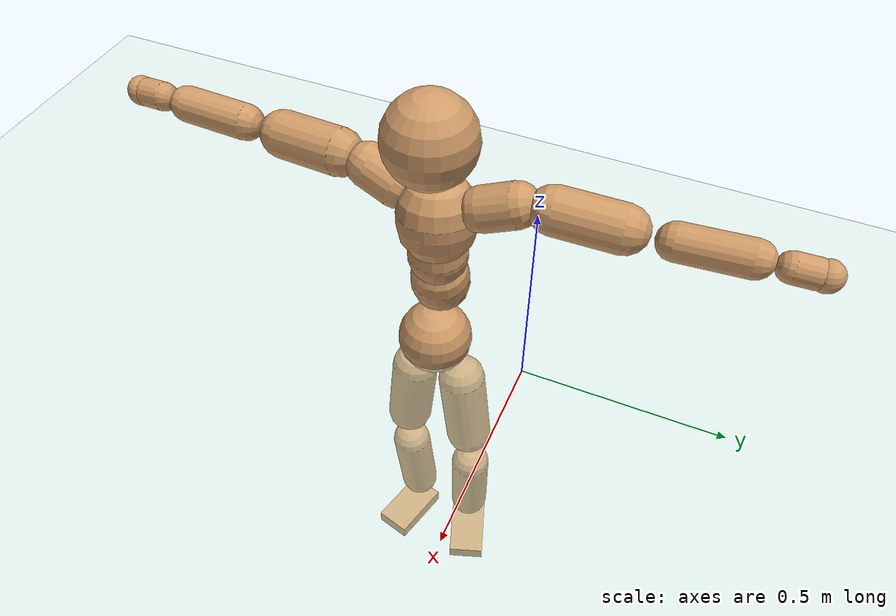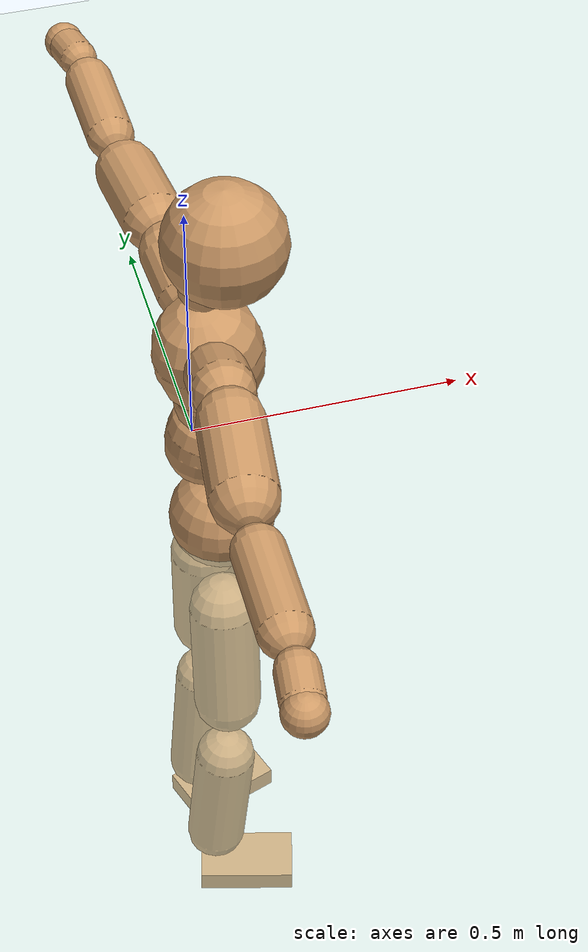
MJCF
<mujoco model="humanoid">
  <compiler coordinate="local"/>
  <default>
    <joint damping="0.0" armature="0.01" stiffness="0.0" limited="true"/>
    <geom conaffinity="1" condim="3" contype="7" margin="0.001" rgba="0.8 0.6 .4 1"/>
  </default>
  <asset>
    <texture type="skybox" builtin="gradient" rgb1=".4 .5 .6" rgb2="0 0 0" width="100" height="100"/>
    <texture builtin="flat" height="1278" mark="cross" markrgb="1 1 1" name="texgeom" random="0.01" rgb1="0.8 0.6 0.4" rgb2="0.8 0.6 0.4" type="cube" width="127"/>
    <texture builtin="checker" height="100" name="texplane" rgb1="0 0 0" rgb2="0.8 0.8 0.8" type="2d" width="100"/>
    <material name="MatPlane" reflectance="0.5" shininess="1" specular="1" texrepeat="60 60" texture="texplane"/>
    <material name="geom" texture="texgeom" texuniform="true"/>
  </asset>
  <worldbody>
    <light cutoff="100" diffuse="1 1 1" dir="-0 0 -1.3" directional="true" exponent="1" pos="0 0 1.3" specular=".1 .1 .1"/>
    <geom conaffinity="1" condim="3" name="floor" pos="0 0 0" rgba="0.8 0.9 0.8 1" size="100 100 .2" type="plane" material="MatPlane"/>
    <body name="Pelvis" pos="-0.0024 -0.2332 0.0238">
      <freejoint name="Pelvis"/>
      <geom type="sphere" contype="1" conaffinity="1" density="500" size="0.0926" pos="0.0000 0.0000 0.0000" name="Pelvis"/>
      <body name="L_Hip" pos="-0.0201 0.0568 -0.0802">
        <joint name="L_Hip_x" type="hinge" pos="0 0 0" axis="1 0 0" stiffness="800" damping="80" armature="0.02" range="-180.0000 180.0000"/>
        <joint name="L_Hip_y" type="hinge" pos="0 0 0" axis="0 1 0" stiffness="800" damping="80" armature="0.02" range="-180.0000 180.0000"/>
        <joint name="L_Hip_z" type="hinge" pos="0 0 0" axis="0 0 1" stiffness="800" damping="80" armature="0.02" range="-180.0000 180.0000"/>
        <geom type="capsule" contype="1" conaffinity="1" density="500" fromto="0.0016 0.0087 -0.0762 0.0063 0.0349 -0.3046" size="0.0612" name="L_Hip"/>
        <body name="L_Knee" pos="0.0078 0.0436 -0.3808">
          <joint name="L_Knee_x" type="hinge" pos="0 0 0" axis="1 0 0" stiffness="800" damping="80" armature="0.02" range="-180.0000 180.0000"/>
          <joint name="L_Knee_y" type="hinge" pos="0 0 0" axis="0 1 0" stiffness="800" damping="80" armature="0.02" range="-180.0000 180.0000"/>
          <joint name="L_Knee_z" type="hinge" pos="0 0 0" axis="0 0 1" stiffness="800" damping="80" armature="0.02" range="-180.0000 180.0000"/>
          <geom type="capsule" contype="1" conaffinity="1" density="500" fromto="-0.0072 -0.0028 -0.0829 -0.0289 -0.0112 -0.3317" size="0.0541" name="L_Knee"/>
          <body name="L_Ankle" pos="-0.0361 -0.014 -0.4146">
            <joint name="L_Ankle_x" type="hinge" pos="0 0 0" axis="1 0 0" stiffness="800" damping="80" armature="0.02" range="-180.0000 180.0000"/>
            <joint name="L_Ankle_y" type="hinge" pos="0 0 0" axis="0 1 0" stiffness="800" damping="80" armature="0.02" range="-180.0000 180.0000"/>
            <joint name="L_Ankle_z" type="hinge" pos="0 0 0" axis="0 0 1" stiffness="800" damping="80" armature="0.02" range="-180.0000 180.0000"/>
            <geom type="box" contype="1" conaffinity="1" density="500" pos="0.0595 0.0204 -0.0294" size="0.0868 0.0512 0.0209" quat="0.9864 0.0000 0.0000 0.1642" name="L_Ankle"/>
            <body name="L_Toe" pos="0.1191 0.0408 -0.0588">
              <joint name="L_Toe_x" type="hinge" pos="0 0 0" axis="1 0 0" stiffness="500" damping="50" armature="0.02" range="-180.0000 180.0000"/>
              <joint name="L_Toe_y" type="hinge" pos="0 0 0" axis="0 1 0" stiffness="500" damping="50" armature="0.02" range="-180.0000 180.0000"/>
              <joint name="L_Toe_z" type="hinge" pos="0 0 0" axis="0 0 1" stiffness="500" damping="50" armature="0.02" range="-180.0000 180.0000"/>
              <geom type="box" contype="1" conaffinity="1" density="500" pos="0.0000 0.0000 0.0287" size="0.0011 0.0025 0.001" quat="0.9856 0.0000 0.0000 0.1689" name="L_Toe"/>
            </body>
          </body>
        </body>
      </body>
      <body name="R_Hip" pos="-0.0164 -0.0589 -0.088">
        <joint name="R_Hip_x" type="hinge" pos="0 0 0" axis="1 0 0" stiffness="800" damping="80" armature="0.02" range="-180.0000 180.0000"/>
        <joint name="R_Hip_y" type="hinge" pos="0 0 0" axis="0 1 0" stiffness="800" damping="80" armature="0.02" range="-180.0000 180.0000"/>
        <joint name="R_Hip_z" type="hinge" pos="0 0 0" axis="0 0 1" stiffness="800" damping="80" armature="0.02" range="-180.0000 180.0000"/>
        <geom type="capsule" contype="1" conaffinity="1" density="500" fromto="-0.0010 -0.0085 -0.0754 -0.0039 -0.0340 -0.3015" size="0.0606" name="R_Hip"/>
        <body name="R_Knee" pos="-0.0049 -0.0425 -0.3769">
          <joint name="R_Knee_x" type="hinge" pos="0 0 0" axis="1 0 0" stiffness="800" damping="80" armature="0.02" range="-180.0000 180.0000"/>
          <joint name="R_Knee_y" type="hinge" pos="0 0 0" axis="0 1 0" stiffness="800" damping="80" armature="0.02" range="-180.0000 180.0000"/>
          <joint name="R_Knee_z" type="hinge" pos="0 0 0" axis="0 0 1" stiffness="800" damping="80" armature="0.02" range="-180.0000 180.0000"/>
          <geom type="capsule" contype="1" conaffinity="1" density="500" fromto="-0.0067 0.0037 -0.0815 -0.0267 0.0148 -0.3261" size="0.0544" name="R_Knee"/>
          <body name="R_Ankle" pos="-0.0334 0.0185 -0.4076">
            <joint name="R_Ankle_x" type="hinge" pos="0 0 0" axis="1 0 0" stiffness="800" damping="80" armature="0.02" range="-180.0000 180.0000"/>
            <joint name="R_Ankle_y" type="hinge" pos="0 0 0" axis="0 1 0" stiffness="800" damping="80" armature="0.02" range="-180.0000 180.0000"/>
            <joint name="R_Ankle_z" type="hinge" pos="0 0 0" axis="0 0 1" stiffness="800" damping="80" armature="0.02" range="-180.0000 180.0000"/>
            <geom type="box" contype="1" conaffinity="1" density="500" pos="0.0637 -0.0169 -0.0303" size="0.0889 0.0504 0.0213" quat="0.9916 0.0000 0.0000 -0.1291" name="R_Ankle"/>
            <body name="R_Toe" pos="0.1274 -0.0338 -0.0607">
              <joint name="R_Toe_x" type="hinge" pos="0 0 0" axis="1 0 0" stiffness="500" damping="50" armature="0.02" range="-180.0000 180.0000"/>
              <joint name="R_Toe_y" type="hinge" pos="0 0 0" axis="0 1 0" stiffness="500" damping="50" armature="0.02" range="-180.0000 180.0000"/>
              <joint name="R_Toe_z" type="hinge" pos="0 0 0" axis="0 0 1" stiffness="500" damping="50" armature="0.02" range="-180.0000 180.0000"/>
              <geom type="box" contype="1" conaffinity="1" density="500" pos="0.0000 0.0000 0.0306" size="0.001 0.0025 0.0011" quat="0.9928 0.0000 0.0000 -0.1200" name="R_Toe"/>
            </body>
          </body>
        </body>
      </body>
      <body name="Torso" pos="-0.0345 0.0043 0.1195">
        <joint name="Torso_x" type="hinge" pos="0 0 0" axis="1 0 0" stiffness="1000" damping="100" armature="0.02" range="-180.0000 180.0000"/>
        <joint name="Torso_y" type="hinge" pos="0 0 0" axis="0 1 0" stiffness="1000" damping="100" armature="0.02" range="-180.0000 180.0000"/>
        <joint name="Torso_z" type="hinge" pos="0 0 0" axis="0 0 1" stiffness="1000" damping="100" armature="0.02" range="-180.0000 180.0000"/>
        <geom type="capsule" contype="1" conaffinity="1" density="500" fromto="0.0162 0.0025 0.0812 0.0108 0.0017 0.0541" size="0.070494" name="Torso"/>
        <body name="Spine" pos="0.027 0.0042 0.1353">
          <joint name="Spine_x" type="hinge" pos="0 0 0" axis="1 0 0" stiffness="1000" damping="100" armature="0.02" range="-180.0000 180.0000"/>
          <joint name="Spine_y" type="hinge" pos="0 0 0" axis="0 1 0" stiffness="1000" damping="100" armature="0.02" range="-180.0000 180.0000"/>
          <joint name="Spine_z" type="hinge" pos="0 0 0" axis="0 0 1" stiffness="1000" damping="100" armature="0.02" range="-180.0000 180.0000"/>
          <geom type="capsule" contype="1" conaffinity="1" density="500" fromto="0.0018 -0.0011 0.0328 0.0012 -0.0008 0.0219" size="0.070308" name="Spine"/>
          <body name="Chest" pos="0.003 -0.0019 0.0547">
            <joint name="Chest_x" type="hinge" pos="0 0 0" axis="1 0 0" stiffness="1000" damping="100" armature="0.02" range="-180.0000 180.0000"/>
            <joint name="Chest_y" type="hinge" pos="0 0 0" axis="0 1 0" stiffness="1000" damping="100" armature="0.02" range="-180.0000 180.0000"/>
            <joint name="Chest_z" type="hinge" pos="0 0 0" axis="0 0 1" stiffness="1000" damping="100" armature="0.02" range="-180.0000 180.0000"/>
            <geom type="capsule" contype="1" conaffinity="1" density="500" fromto="-0.0133 -0.0050 0.0845 -0.0089 -0.0033 0.0563" size="0.091791" name="Chest"/>
            <body name="Neck" pos="-0.0292 -0.0137 0.2041">
              <joint name="Neck_x" type="hinge" pos="0 0 0" axis="1 0 0" stiffness="500" damping="50" armature="0.02" range="-180.0000 180.0000"/>
              <joint name="Neck_y" type="hinge" pos="0 0 0" axis="0 1 0" stiffness="500" damping="50" armature="0.02" range="-180.0000 180.0000"/>
              <joint name="Neck_z" type="hinge" pos="0 0 0" axis="0 0 1" stiffness="500" damping="50" armature="0.02" range="-180.0000 180.0000"/>
              <geom type="capsule" contype="1" conaffinity="1" density="500" fromto="0.0098 0.0020 0.0178 0.0391 0.0080 0.0712" size="0.041292" name="Neck"/>
              <body name="Head" pos="0.0489 0.01 0.089">
                <joint name="Head_x" type="hinge" pos="0 0 0" axis="1 0 0" stiffness="500" damping="50" armature="0.02" range="-180.0000 180.0000"/>
                <joint name="Head_y" type="hinge" pos="0 0 0" axis="0 1 0" stiffness="500" damping="50" armature="0.02" range="-180.0000 180.0000"/>
                <joint name="Head_z" type="hinge" pos="0 0 0" axis="0 0 1" stiffness="500" damping="50" armature="0.02" range="-180.0000 180.0000"/>
                <geom type="sphere" contype="1" conaffinity="1" density="500" size="0.1030" pos="0.0000 0.0000 0.0000" name="Head"/>
              </body>
            </body>
            <body name="L_Thorax" pos="-0.016 0.0713 0.1099">
              <joint name="L_Thorax_x" type="hinge" pos="0 0 0" axis="1 0 0" stiffness="500" damping="50" armature="0.02" range="-180.0000 180.0000"/>
              <joint name="L_Thorax_y" type="hinge" pos="0 0 0" axis="0 1 0" stiffness="500" damping="50" armature="0.02" range="-180.0000 180.0000"/>
              <joint name="L_Thorax_z" type="hinge" pos="0 0 0" axis="0 0 1" stiffness="500" damping="50" armature="0.02" range="-180.0000 180.0000"/>
              <geom type="capsule" contype="1" conaffinity="1" density="500" fromto="-0.0037 0.0245 0.0092 -0.0146 0.0980 0.0367" size="0.0518" name="L_Thorax"/>
              <body name="L_Shoulder" pos="-0.0183 0.1225 0.0458">
                <joint name="L_Shoulder_x" type="hinge" pos="0 0 0" axis="1 0 0" stiffness="500" damping="50" armature="0.02" range="-720.0000 720.0000"/>
                <joint name="L_Shoulder_y" type="hinge" pos="0 0 0" axis="0 1 0" stiffness="500" damping="50" armature="0.02" range="-720.0000 720.0000"/>
                <joint name="L_Shoulder_z" type="hinge" pos="0 0 0" axis="0 0 1" stiffness="500" damping="50" armature="0.02" range="-720.0000 720.0000"/>
                <geom type="capsule" contype="1" conaffinity="1" density="500" fromto="-0.0044 0.0502 -0.0033 -0.0174 0.2008 -0.0130" size="0.0541" name="L_Shoulder"/>
                <body name="L_Elbow" pos="-0.0218 0.2509 -0.0163">
                  <joint name="L_Elbow_x" type="hinge" pos="0 0 0" axis="1 0 0" stiffness="500" damping="50" armature="0.02" range="-720.0000 720.0000"/>
                  <joint name="L_Elbow_y" type="hinge" pos="0 0 0" axis="0 1 0" stiffness="500" damping="50" armature="0.02" range="-720.0000 720.0000"/>
                  <joint name="L_Elbow_z" type="hinge" pos="0 0 0" axis="0 0 1" stiffness="500" damping="50" armature="0.02" range="-720.0000 720.0000"/>
                  <geom type="capsule" contype="1" conaffinity="1" density="500" fromto="-0.0015 0.0520 0.0025 -0.0059 0.2082 0.0099" size="0.0418" name="L_Elbow"/>
                  <body name="L_Wrist" pos="-0.0073 0.2602 0.0123">
                    <joint name="L_Wrist_x" type="hinge" pos="0 0 0" axis="1 0 0" stiffness="300" damping="30" armature="0.02" range="-180.0000 180.0000"/>
                    <joint name="L_Wrist_y" type="hinge" pos="0 0 0" axis="0 1 0" stiffness="300" damping="30" armature="0.02" range="-180.0000 180.0000"/>
                    <joint name="L_Wrist_z" type="hinge" pos="0 0 0" axis="0 0 1" stiffness="300" damping="30" armature="0.02" range="-180.0000 180.0000"/>
                    <geom type="capsule" contype="1" conaffinity="1" density="500" fromto="-0.0031 0.0170 -0.0021 -0.0122 0.0680 -0.0084" size="0.0334" name="L_Wrist"/>
                    <body name="L_Hand" pos="-0.0153 0.0849 -0.0105">
                      <joint name="L_Hand_x" type="hinge" pos="0 0 0" axis="1 0 0" stiffness="300" damping="30" armature="0.02" range="-180.0000 180.0000"/>
                      <joint name="L_Hand_y" type="hinge" pos="0 0 0" axis="0 1 0" stiffness="300" damping="30" armature="0.02" range="-180.0000 180.0000"/>
                      <joint name="L_Hand_z" type="hinge" pos="0 0 0" axis="0 0 1" stiffness="300" damping="30" armature="0.02" range="-180.0000 180.0000"/>
                      <geom type="sphere" contype="1" conaffinity="1" density="500" size="0.0349" pos="0.0000 0.0000 0.0000" name="L_Hand"/>
                    </body>
                  </body>
                </body>
              </body>
            </body>
            <body name="R_Thorax" pos="-0.0214 -0.0825 0.1084">
              <joint name="R_Thorax_x" type="hinge" pos="0 0 0" axis="1 0 0" stiffness="500" damping="50" armature="0.02" range="-180.0000 180.0000"/>
              <joint name="R_Thorax_y" type="hinge" pos="0 0 0" axis="0 1 0" stiffness="500" damping="50" armature="0.02" range="-180.0000 180.0000"/>
              <joint name="R_Thorax_z" type="hinge" pos="0 0 0" axis="0 0 1" stiffness="500" damping="50" armature="0.02" range="-180.0000 180.0000"/>
              <geom type="capsule" contype="1" conaffinity="1" density="500" fromto="-0.0016 -0.0225 0.0095 -0.0064 -0.0900 0.0380" size="0.0519" name="R_Thorax"/>
              <body name="R_Shoulder" pos="-0.008 -0.1125 0.0475">
                <joint name="R_Shoulder_x" type="hinge" pos="0 0 0" axis="1 0 0" stiffness="500" damping="50" armature="0.02" range="-720.0000 720.0000"/>
                <joint name="R_Shoulder_y" type="hinge" pos="0 0 0" axis="0 1 0" stiffness="500" damping="50" armature="0.02" range="-720.0000 720.0000"/>
                <joint name="R_Shoulder_z" type="hinge" pos="0 0 0" axis="0 0 1" stiffness="500" damping="50" armature="0.02" range="-720.0000 720.0000"/>
                <geom type="capsule" contype="1" conaffinity="1" density="500" fromto="-0.0061 -0.0510 -0.0031 -0.0244 -0.2039 -0.0123" size="0.0549" name="R_Shoulder"/>
                <body name="R_Elbow" pos="-0.0305 -0.2549 -0.0154">
                  <joint name="R_Elbow_x" type="hinge" pos="0 0 0" axis="1 0 0" stiffness="500" damping="50" armature="0.02" range="-720.0000 720.0000"/>
                  <joint name="R_Elbow_y" type="hinge" pos="0 0 0" axis="0 1 0" stiffness="500" damping="50" armature="0.02" range="-720.0000 720.0000"/>
                  <joint name="R_Elbow_z" type="hinge" pos="0 0 0" axis="0 0 1" stiffness="500" damping="50" armature="0.02" range="-720.0000 720.0000"/>
                  <geom type="capsule" contype="1" conaffinity="1" density="500" fromto="-0.0011 -0.0527 0.0012 -0.0043 -0.2109 0.0049" size="0.0424" name="R_Elbow"/>
                  <body name="R_Wrist" pos="-0.0054 -0.2636 0.0062">
                    <joint name="R_Wrist_x" type="hinge" pos="0 0 0" axis="1 0 0" stiffness="300" damping="30" armature="0.02" range="-180.0000 180.0000"/>
                    <joint name="R_Wrist_y" type="hinge" pos="0 0 0" axis="0 1 0" stiffness="300" damping="30" armature="0.02" range="-180.0000 180.0000"/>
                    <joint name="R_Wrist_z" type="hinge" pos="0 0 0" axis="0 0 1" stiffness="300" damping="30" armature="0.02" range="-180.0000 180.0000"/>
                    <geom type="capsule" contype="1" conaffinity="1" density="500" fromto="-0.0020 -0.0173 -0.0017 -0.0080 -0.0693 -0.0068" size="0.0339" name="R_Wrist"/>
                    <body name="R_Hand" pos="-0.01 -0.0867 -0.0085">
                      <joint name="R_Hand_x" type="hinge" pos="0 0 0" axis="1 0 0" stiffness="300" damping="30" armature="0.02" range="-180.0000 180.0000"/>
                      <joint name="R_Hand_y" type="hinge" pos="0 0 0" axis="0 1 0" stiffness="300" damping="30" armature="0.02" range="-180.0000 180.0000"/>
                      <joint name="R_Hand_z" type="hinge" pos="0 0 0" axis="0 0 1" stiffness="300" damping="30" armature="0.02" range="-180.0000 180.0000"/>
                      <geom type="sphere" contype="1" conaffinity="1" density="500" size="0.0352" pos="0.0000 0.0000 0.0000" name="R_Hand"/>
                    </body>
                  </body>
                </body>
              </body>
            </body>
          </body>
        </body>
      </body>
    </body>
  </worldbody>
  <actuator>
    <motor name="L_Hip_x" joint="L_Hip_x" gear="500"/>
    <motor name="L_Hip_y" joint="L_Hip_y" gear="500"/>
    <motor name="L_Hip_z" joint="L_Hip_z" gear="500"/>
    <motor name="L_Knee_x" joint="L_Knee_x" gear="500"/>
    <motor name="L_Knee_y" joint="L_Knee_y" gear="500"/>
    <motor name="L_Knee_z" joint="L_Knee_z" gear="500"/>
    <motor name="L_Ankle_x" joint="L_Ankle_x" gear="500"/>
    <motor name="L_Ankle_y" joint="L_Ankle_y" gear="500"/>
    <motor name="L_Ankle_z" joint="L_Ankle_z" gear="500"/>
    <motor name="L_Toe_x" joint="L_Toe_x" gear="500"/>
    <motor name="L_Toe_y" joint="L_Toe_y" gear="500"/>
    <motor name="L_Toe_z" joint="L_Toe_z" gear="500"/>
    <motor name="R_Hip_x" joint="R_Hip_x" gear="500"/>
    <motor name="R_Hip_y" joint="R_Hip_y" gear="500"/>
    <motor name="R_Hip_z" joint="R_Hip_z" gear="500"/>
    <motor name="R_Knee_x" joint="R_Knee_x" gear="500"/>
    <motor name="R_Knee_y" joint="R_Knee_y" gear="500"/>
    <motor name="R_Knee_z" joint="R_Knee_z" gear="500"/>
    <motor name="R_Ankle_x" joint="R_Ankle_x" gear="500"/>
    <motor name="R_Ankle_y" joint="R_Ankle_y" gear="500"/>
    <motor name="R_Ankle_z" joint="R_Ankle_z" gear="500"/>
    <motor name="R_Toe_x" joint="R_Toe_x" gear="500"/>
    <motor name="R_Toe_y" joint="R_Toe_y" gear="500"/>
    <motor name="R_Toe_z" joint="R_Toe_z" gear="500"/>
    <motor name="Torso_x" joint="Torso_x" gear="500"/>
    <motor name="Torso_y" joint="Torso_y" gear="500"/>
    <motor name="Torso_z" joint="Torso_z" gear="500"/>
    <motor name="Spine_x" joint="Spine_x" gear="500"/>
    <motor name="Spine_y" joint="Spine_y" gear="500"/>
    <motor name="Spine_z" joint="Spine_z" gear="500"/>
    <motor name="Chest_x" joint="Chest_x" gear="500"/>
    <motor name="Chest_y" joint="Chest_y" gear="500"/>
    <motor name="Chest_z" joint="Chest_z" gear="500"/>
    <motor name="Neck_x" joint="Neck_x" gear="500"/>
    <motor name="Neck_y" joint="Neck_y" gear="500"/>
    <motor name="Neck_z" joint="Neck_z" gear="500"/>
    <motor name="Head_x" joint="Head_x" gear="500"/>
    <motor name="Head_y" joint="Head_y" gear="500"/>
    <motor name="Head_z" joint="Head_z" gear="500"/>
    <motor name="L_Thorax_x" joint="L_Thorax_x" gear="500"/>
    <motor name="L_Thorax_y" joint="L_Thorax_y" gear="500"/>
    <motor name="L_Thorax_z" joint="L_Thorax_z" gear="500"/>
    <motor name="L_Shoulder_x" joint="L_Shoulder_x" gear="500"/>
    <motor name="L_Shoulder_y" joint="L_Shoulder_y" gear="500"/>
    <motor name="L_Shoulder_z" joint="L_Shoulder_z" gear="500"/>
    <motor name="L_Elbow_x" joint="L_Elbow_x" gear="500"/>
    <motor name="L_Elbow_y" joint="L_Elbow_y" gear="500"/>
    <motor name="L_Elbow_z" joint="L_Elbow_z" gear="500"/>
    <motor name="L_Wrist_x" joint="L_Wrist_x" gear="500"/>
    <motor name="L_Wrist_y" joint="L_Wrist_y" gear="500"/>
    <motor name="L_Wrist_z" joint="L_Wrist_z" gear="500"/>
    <motor name="L_Hand_x" joint="L_Hand_x" gear="500"/>
    <motor name="L_Hand_y" joint="L_Hand_y" gear="500"/>
    <motor name="L_Hand_z" joint="L_Hand_z" gear="500"/>
    <motor name="R_Thorax_x" joint="R_Thorax_x" gear="500"/>
    <motor name="R_Thorax_y" joint="R_Thorax_y" gear="500"/>
    <motor name="R_Thorax_z" joint="R_Thorax_z" gear="500"/>
    <motor name="R_Shoulder_x" joint="R_Shoulder_x" gear="500"/>
    <motor name="R_Shoulder_y" joint="R_Shoulder_y" gear="500"/>
    <motor name="R_Shoulder_z" joint="R_Shoulder_z" gear="500"/>
    <motor name="R_Elbow_x" joint="R_Elbow_x" gear="500"/>
    <motor name="R_Elbow_y" joint="R_Elbow_y" gear="500"/>
    <motor name="R_Elbow_z" joint="R_Elbow_z" gear="500"/>
    <motor name="R_Wrist_x" joint="R_Wrist_x" gear="500"/>
    <motor name="R_Wrist_y" joint="R_Wrist_y" gear="500"/>
    <motor name="R_Wrist_z" joint="R_Wrist_z" gear="500"/>
    <motor name="R_Hand_x" joint="R_Hand_x" gear="500"/>
    <motor name="R_Hand_y" joint="R_Hand_y" gear="500"/>
    <motor name="R_Hand_z" joint="R_Hand_z" gear="500"/>
  </actuator>
  <contact>
    <exclude body1="Torso" body2="Chest"/>
    <exclude body1="Head" body2="Chest"/>
    <exclude body1="R_Knee" body2="R_Toe"/>
    <exclude body1="R_Knee" body2="L_Ankle"/>
    <exclude body1="R_Knee" body2="L_Toe"/>
    <exclude body1="L_Knee" body2="L_Toe"/>
    <exclude body1="L_Knee" body2="R_Ankle"/>
    <exclude body1="L_Knee" body2="R_Toe"/>
    <exclude body1="L_Shoulder" body2="Chest"/>
    <exclude body1="R_Shoulder" body2="Chest"/>
  </contact>
  <sensor/>
  <size njmax="700" nconmax="700"/>
</mujoco>
